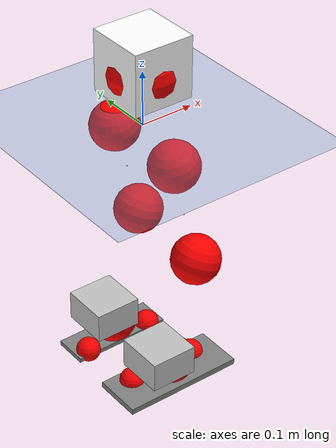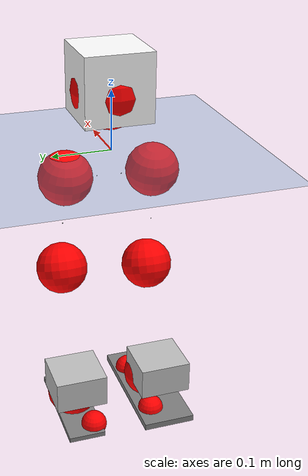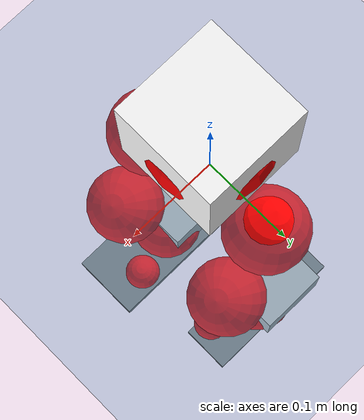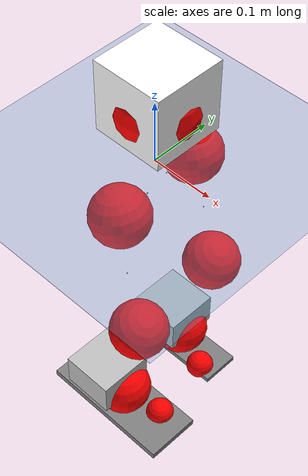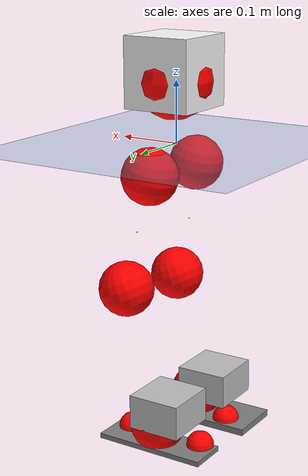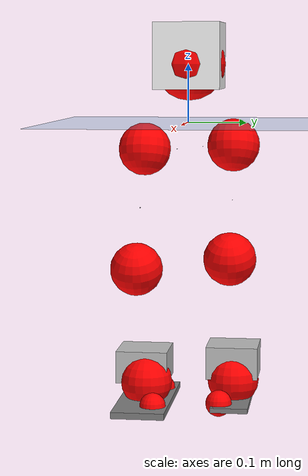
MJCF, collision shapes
<mujoco model="pi_12dof_release_v1">
  <compiler angle="radian" assetdir="assets" balanceinertia="true" inertiafromgeom="false"/>

  <option timestep="0.005" density="1.2" viscosity="2e-05"/>

  <size nkey="1"/>

  <visual>
    <quality shadowsize="8192"/>
    <map shadowclip="0.5"/>
  </visual>

  <default>
    <default class="/">
      <joint armature="0.01" damping="0.01" frictionloss="0.01"/>
      <geom contype="0" conaffinity="0" group="1" solref="-1000 -80"/>
      <site size="0.01 0.005 0.005" group="5"/>
      <general forcelimited="true" biastype="affine" gainprm="20" biasprm="0 -20 -0.5"/>
      <default class="foot">
        <geom size="0.0845 0.036 0.005" type="box" condim="6" group="4" priority="1" friction="0.9 0.2 0.2" solimp="0.015 1 0.005"/>
      </default>
      <default class="reward_collision_sphere">
        <geom group="5" rgba="1 0 0 1"/>
      </default>
    </default>
  </default>

  <asset>
    <texture type="skybox" colorspace="auto" name="//unnamed_texture_0" builtin="gradient" rgb1="0.95 0.95 0.95" rgb2="0.95 0.95 0.95" width="100" height="600"/>
    <texture type="2d" colorspace="auto" name="texplane" builtin="checker" rgb1="0.345 0.575 0.748" rgb2="0.345 0.575 0.748" markrgb="1 1 1" width="512" height="512"/>
    <material name="MatPlane" class="/" texture="texplane" texuniform="true" texrepeat="2 2" specular="0.9"/>
    <mesh name="baselink_1" class="/" file="baselink_1.STL"/>
    <mesh name="r_hip_pitch_link" class="/" file="r_hip_pitch_link.STL"/>
    <mesh name="r_hip_roll_link" class="/" file="r_hip_roll_link.STL"/>
    <mesh name="r_thigh_link" class="/" file="r_thigh_link.STL"/>
    <mesh name="r_calf_link" class="/" file="r_calf_link.STL"/>
    <mesh name="r_ankle_pitch_link" class="/" file="r_ankle_pitch_link.STL"/>
    <mesh name="r_ankle_roll_link" class="/" file="r_ankle_roll_link.STL"/>
    <mesh name="l_hip_pitch_link" class="/" file="l_hip_pitch_link.STL"/>
    <mesh name="l_hip_roll_link" class="/" file="l_hip_roll_link.STL"/>
    <mesh name="l_thigh_link" class="/" file="l_thigh_link.STL"/>
    <mesh name="l_calf_link" class="/" file="l_calf_link.STL"/>
    <mesh name="l_ankle_pitch_link" class="/" file="l_ankle_pitch_link.STL"/>
    <mesh name="l_ankle_roll_link" class="/" file="l_ankle_roll_link.STL"/>
  </asset>

  <worldbody>
    <geom name="floor" class="/" size="100 100 0.125" type="plane" group="0" material="MatPlane"/>
    <light name="toplight_shadow" class="/" pos="0 0 5" dir="0.0990148 0.0990148 -0.990148" type="directional" ambient="0.04 0.04 0.04" diffuse="0.55 0.55 0.55" specular="0.12 0.12 0.12"/>
    <light name="toplight_fill" class="/" pos="0 0 5" dir="0.0990148 0.0990148 -0.990148" type="directional" castshadow="false" ambient="0.04 0.04 0.04" diffuse="0.3 0.3 0.3" specular="0.08 0.08 0.08"/>
    <body name="trunk" pos="0.00230652 0.00234109 0.000111395" quat="1 -2.78684e-06 0.000182262 -0.000682684">
      <inertial pos="0.00270911 -0.000926104 0.0598044" quat="0.695908 -0.00445217 0.0202649 0.717831" mass="3.211" diaginertia="0.0083185 0.00806284 0.0226027"/>
      <joint name="//unnamed_joint_0" type="free"/>
      <geom name="//unnamed_geom_1" class="/" type="mesh" density="0" rgba="1 1 1 1" mesh="baselink_1"/>
      <geom name="//unnamed_geom_2" class="/" size="0.056394 0.056394 0.056394" pos="0 0 0.113925" type="box" rgba="1 1 1 1"/>
      <geom name="//unnamed_geom_3" class="reward_collision_sphere" size="0.0620334" pos="0 0 0.0996846"/>
      <site name="imu" class="/" pos="-0.00300053 0.0359633 -0.00620304" size="0.0112788"/>
      <camera name="track" class="/" pos="0 -1.95706 0" quat="0.707107 0.707107 0 0" mode="trackcom"/>
      <camera name="ego_camera" class="/" pos="0.0735781 0 0.256332" quat="-0.5 -0.5 0.5 0.5"/>
      <body name="r_hip_pitch_link" pos="0.00294842 -0.0213608 -0.0453433" quat="0.992588 -0.00124007 -0.121525 -0.00034083">
        <inertial pos="0.00107548 -0.0554758 -0.000947235" quat="-0.0130402 0.709021 -0.0383527 0.704023" mass="0.492536" diaginertia="9.21378e-05 8.12381e-05 0.000451798"/>
        <joint name="r_hip_pitch_joint" class="/" pos="0 0 0" axis="0.000758961 -0.999998 0.0017343" stiffness="0.02426" range="-1.7327 1.29574" armature="0.0115497" damping="0.0377685" frictionloss="0.0123305"/>
        <geom name="//unnamed_geom_4" class="/" type="mesh" density="0" rgba="0.75294 0.75294 0.75294 1" mesh="r_hip_pitch_link"/>
        <geom name="//unnamed_geom_5" class="/" size="0.00056394 0.00056394 0.00056394" type="box" rgba="0.75294 0.75294 0.75294 1"/>
        <body name="r_hip_roll_link" pos="0.00333252 -0.0553991 -0.00154909" quat="1 0.000124299 -0.000513593 0.000172643">
          <inertial pos="-0.000783807 0.00550268 -0.0794777" quat="0.704417 -0.0853875 -0.0763643 0.700481" mass="0.551095" diaginertia="0.000318437 0.000255793 0.00078838"/>
          <joint name="r_hip_roll_joint" class="/" pos="0 0 0" axis="-0.999931 0.00951306 -0.0068916" stiffness="0.0020393" range="-0.0701023 0.394234" armature="0.0120981" damping="0" frictionloss="0.0104169"/>
          <geom name="//unnamed_geom_6" class="/" type="mesh" density="0" rgba="0.75294 0.75294 0.75294 1" mesh="r_hip_roll_link"/>
          <geom name="//unnamed_geom_7" class="/" size="0.00056394 0.00056394 0.00056394" type="box" rgba="0.75294 0.75294 0.75294 1"/>
          <geom name="//unnamed_geom_8" class="reward_collision_sphere" size="0.0451152"/>
          <body name="r_thigh_link" pos="-0.00761522 -0.0059548 -0.10106" quat="1 -4.25811e-05 7.61392e-05 0.000278492">
            <inertial pos="-0.00115352 0.00176906 -0.0696376" quat="0.736961 0.675924 -0.00266386 -0.00269984" mass="0.151986" diaginertia="0.000111324 8.30997e-05 0.000338018"/>
            <joint name="r_thigh_joint" class="/" pos="0 0 0" axis="0.00581295 0.00338161 -0.999977" range="-0.266566 0.601863" armature="0.0126763" damping="0.0117027" frictionloss="0.0153753"/>
            <geom name="//unnamed_geom_9" class="/" type="mesh" density="0" rgba="0.75294 0.75294 0.75294 1" mesh="r_thigh_link"/>
            <geom name="//unnamed_geom_10" class="/" size="0.00056394 0.00056394 0.00056394" type="box" rgba="0.75294 0.75294 0.75294 1"/>
            <body name="r_calf_link" pos="0.000193167 -0.00245597 -0.106143" quat="0.947658 8.8154e-05 0.319288 -5.2871e-05">
              <inertial pos="-0.00266556 0.000885597 -0.0998744" quat="0.999511 -0.0198433 0.0175792 0.0165722" mass="1.09261" diaginertia="0.00297665 0.00293826 0.000975353"/>
              <joint name="r_calf_joint" class="/" pos="0 0 0" axis="-0.0109191 -0.99991 -0.00784104" stiffness="0.0238116" range="-1.75427 0.649329" armature="0.0131997" damping="0.0199664" frictionloss="0.0109082"/>
              <geom name="//unnamed_geom_11" class="/" type="mesh" density="0" rgba="0.75294 0.75294 0.75294 1" mesh="r_calf_link"/>
              <geom name="//unnamed_geom_12" class="/" size="0.00056394 0.00056394 0.00056394" type="box" rgba="0.75294 0.75294 0.75294 1"/>
              <geom name="//unnamed_geom_13" class="reward_collision_sphere" size="0.0451152"/>
              <body name="r_ankle_pitch_link" pos="0.000301804 0.00270989 -0.195787" quat="0.979927 -0.000574579 -0.199355 0.000214194">
                <inertial pos="0.0047785 0.00331556 0.00593278" quat="-0.00379018 0.732589 -0.00418019 0.680648" mass="0.23928" diaginertia="0.000260642 0.000185451 0.000653971"/>
                <joint name="r_ankle_pitch_joint" class="/" pos="0 0 0" axis="-0.00394068 -0.999985 -0.00375744" stiffness="0.00251578" range="-1.31327 0.368296" armature="0.0114308" damping="0.00557245" frictionloss="0.00880132"/>
                <geom name="//unnamed_geom_14" class="/" type="mesh" density="0" rgba="0.75294 0.75294 0.75294 1" mesh="r_ankle_pitch_link"/>
                <geom name="//unnamed_geom_15" class="/" size="0.0439873 0.0451152 0.028197" type="box" rgba="0.75294 0.75294 0.75294 1"/>
                <body name="r_ankle_roll_link" pos="0.078473 0.00747026 0.00285394" quat="1 0.000372704 0.000144035 -0.000210576">
                  <inertial pos="-0.0217641 0.00146952 -0.028137" quat="0.558689 0.429546 0.435314 0.560231" mass="0.845334" diaginertia="0.00113616 0.000923719 0.00192927"/>
                  <joint name="r_ankle_roll_joint" class="/" pos="0 0 0" axis="-0.999682 -0.0152975 -0.0200241" stiffness="0.00656366" range="-0.186772 0.240133" armature="0.0146721" damping="0" frictionloss="0.0116016"/>
                  <geom name="//unnamed_geom_16" class="/" type="mesh" density="0" rgba="0.75294 0.75294 0.75294 1" mesh="r_ankle_roll_link"/>
                  <geom name="//unnamed_geom_17" class="/" type="mesh" rgba="0.75294 0.75294 0.75294 1" mesh="r_ankle_roll_link"/>
                  <geom name="right_foot" class="foot" size="0.114538 0.0455353 0.00554691" pos="-0.0500331 0 -0.0626589"/>
                  <geom name="//unnamed_geom_19" class="reward_collision_sphere" size="0.0451152" pos="-0.0490521 0 -0.0284813"/>
                  <geom name="//unnamed_geom_20" class="reward_collision_sphere" size="0.0225576" pos="0.0147156 0.0195706 -0.0569626"/>
                  <geom name="//unnamed_geom_21" class="reward_collision_sphere" size="0.0225576" pos="-0.117725 0.0195706 -0.0569626"/>
                  <site name="right_foot" class="foot" pos="-0.0500331 0 -0.0626589" size="0.0112788"/>
                </body>
              </body>
            </body>
          </body>
        </body>
      </body>
      <body name="l_hip_pitch_link" pos="-0.00327237 0.0226665 -0.0413162" quat="0.99221 -2.6567e-05 -0.124576 -6.39858e-05">
        <inertial pos="-0.000160687 0.0503292 0.00476432" quat="-0.0338344 0.708764 0.0390429 0.703551" mass="0.508445" diaginertia="0.000107202 9.37077e-05 0.000586913"/>
        <joint name="l_hip_pitch_joint" class="/" pos="0 0 0" axis="0.00230397 0.999987 -0.0045364" range="-1.30004 1.79267" armature="0.00957944" damping="0.0274784" frictionloss="0.0099532"/>
        <geom name="//unnamed_geom_22" class="/" type="mesh" density="0" rgba="0.75294 0.75294 0.75294 1" mesh="l_hip_pitch_link"/>
        <geom name="//unnamed_geom_23" class="/" size="0.00056394 0.00056394 0.00056394" type="box" rgba="0.75294 0.75294 0.75294 1"/>
        <body name="l_hip_roll_link" pos="0.000799132 0.0530094 0.00276312" quat="1 -8.00758e-05 -0.000256435 0.000339892">
          <inertial pos="0.00284475 0.00326599 -0.0795551" quat="0.702584 -0.0515432 -0.0746075 0.7058" mass="0.546039" diaginertia="0.000327333 0.000254067 0.000808393"/>
          <joint name="l_hip_roll_joint" class="/" pos="0 0 0" axis="-0.999997 -0.00180982 -0.00143323" range="-0.386998 0.0523605" armature="0.0115145" damping="0.0378468" frictionloss="0.0111386"/>
          <geom name="//unnamed_geom_24" class="/" type="mesh" density="0" rgba="0.75294 0.75294 0.75294 1" mesh="l_hip_roll_link"/>
          <geom name="//unnamed_geom_25" class="/" size="0.00056394 0.00056394 0.00056394" type="box" rgba="0.75294 0.75294 0.75294 1"/>
          <geom name="//unnamed_geom_26" class="reward_collision_sphere" size="0.0451152"/>
          <body name="l_thigh_link" pos="0.00128564 0.000346701 -0.0955541" quat="1 -0.000132418 -0.000416951 0.000290498">
            <inertial pos="-0.000751272 -0.000110756 -0.069449" quat="0.685373 0.72812 -0.00319017 0.00977012" mass="0.165905" diaginertia="0.00011377 8.52114e-05 0.000330838"/>
            <joint name="l_thigh_joint" class="/" pos="0 0 0" axis="0.000399599 -0.00204415 -0.999998" stiffness="0.032006" range="-0.605067 0.306666" armature="0.011693" damping="0.00772185" frictionloss="0.00999369"/>
            <geom name="//unnamed_geom_27" class="/" type="mesh" density="0" rgba="0.75294 0.75294 0.75294 1" mesh="l_thigh_link"/>
            <geom name="//unnamed_geom_28" class="/" size="0.00056394 0.00056394 0.00056394" type="box" rgba="0.75294 0.75294 0.75294 1"/>
            <body name="l_calf_link" pos="-0.00213225 -0.00194793 -0.101265" quat="0.947628 -0.000160847 0.319375 -0.000422439">
              <inertial pos="-3.87312e-05 -0.00111333 -0.0971664" quat="0.999983 0.00359539 -0.00124557 0.00442468" mass="1.27174" diaginertia="0.0033609 0.00329944 0.00110407"/>
              <joint name="l_calf_joint" class="/" pos="0 0 0" axis="-0.00326397 0.999993 0.00156439" stiffness="0.00747126" range="-0.786671 1.55051" armature="0.0113586" damping="0.0110698" frictionloss="0.0120893"/>
              <geom name="//unnamed_geom_29" class="/" type="mesh" density="0" rgba="0.75294 0.75294 0.75294 1" mesh="l_calf_link"/>
              <geom name="//unnamed_geom_30" class="/" size="0.00056394 0.00056394 0.00056394" type="box" rgba="0.75294 0.75294 0.75294 1"/>
              <geom name="//unnamed_geom_31" class="reward_collision_sphere" size="0.0451152"/>
              <body name="l_ankle_pitch_link" pos="0.00163153 0.000578524 -0.205399" quat="0.980024 3.048e-06 -0.198882 0.000263425">
                <inertial pos="0.00580162 -0.00314895 0.000838961" quat="-0.000678093 0.708727 0.000951175 0.705482" mass="0.276111" diaginertia="0.00029389 0.000202743 0.000701758"/>
                <joint name="l_ankle_pitch_joint" class="/" pos="0 0 0" axis="0.00166882 0.999991 0.00391772" range="-0.404152 1.26527" armature="0.0130063" damping="0" frictionloss="0.0125228"/>
                <geom name="//unnamed_geom_32" class="/" type="mesh" density="0" rgba="0.75294 0.75294 0.75294 1" mesh="l_ankle_pitch_link"/>
                <geom name="//unnamed_geom_33" class="/" size="0.0439873 0.0451152 0.028197" type="box" rgba="0.75294 0.75294 0.75294 1"/>
                <body name="l_ankle_roll_link" pos="0.0677504 0.0010041 -0.00325599" quat="0.999999 0.000687267 -0.0010585 2.40793e-06">
                  <inertial pos="-0.0231689 0.000483316 -0.0199107" quat="0.550443 0.435596 0.434952 0.56399" mass="0.787431" diaginertia="0.00102196 0.000922455 0.00173229"/>
                  <joint name="l_ankle_roll_joint" class="/" pos="0 0 0" axis="-0.999975 -0.00611473 -0.00360711" stiffness="0.000377554" range="-0.128507 0.153784" armature="0.00964989" damping="0.00517856" frictionloss="0.0113169"/>
                  <geom name="//unnamed_geom_34" class="/" type="mesh" density="0" rgba="0.75294 0.75294 0.75294 1" mesh="l_ankle_roll_link"/>
                  <geom name="//unnamed_geom_35" class="/" type="mesh" rgba="0.75294 0.75294 0.75294 1" mesh="l_ankle_roll_link"/>
                  <geom name="left_foot" class="foot" size="0.0946543 0.0320802 0.0041516" pos="-0.0500331 0 -0.0626589"/>
                  <geom name="//unnamed_geom_37" class="reward_collision_sphere" size="0.0451152" pos="-0.0490521 0 -0.0284813"/>
                  <geom name="//unnamed_geom_38" class="reward_collision_sphere" size="0.0225576" pos="0.0147156 -0.0195706 -0.0569626"/>
                  <geom name="//unnamed_geom_39" class="reward_collision_sphere" size="0.0225576" pos="-0.117725 -0.0195706 -0.0569626"/>
                  <site name="left_foot" class="foot" pos="-0.0500331 0 -0.0626589" size="0.0112788"/>
                </body>
              </body>
            </body>
          </body>
        </body>
      </body>
    </body>
  </worldbody>

  <contact>
    <pair class="/" geom1="floor" geom2="right_foot" name="//unnamed_contact_1"/>
    <pair class="/" geom1="floor" geom2="left_foot" name="//unnamed_contact_0"/>
  </contact>

  <actuator>
    <general name="r_hip_pitch_joint" class="/" joint="r_hip_pitch_joint" forcerange="-23.519 23.519" gainprm="22.6102" biasprm="0 -22.6102 -0.60823"/>
    <general name="r_hip_roll_joint" class="/" joint="r_hip_roll_joint" forcerange="-27.8075 27.8075" gainprm="22.6102" biasprm="0 -22.6102 -0.60823"/>
    <general name="r_thigh_joint" class="/" joint="r_thigh_joint" forcerange="-23.5037 23.5037" gainprm="22.6102" biasprm="0 -22.6102 -0.60823"/>
    <general name="r_calf_joint" class="/" joint="r_calf_joint" forcerange="-22.261 22.261" gainprm="22.6102" biasprm="0 -22.6102 -0.60823"/>
    <general name="r_ankle_pitch_joint" class="/" joint="r_ankle_pitch_joint" forcerange="-24.6983 24.6983" gainprm="22.6102" biasprm="0 -22.6102 -0.60823"/>
    <general name="r_ankle_roll_joint" class="/" joint="r_ankle_roll_joint" forcerange="-23.2 23.2" gainprm="22.6102" biasprm="0 -22.6102 -0.60823"/>
    <general name="l_hip_pitch_joint" class="/" joint="l_hip_pitch_joint" forcerange="-26.0538 26.0538" gainprm="22.6102" biasprm="0 -22.6102 -0.60823"/>
    <general name="l_hip_roll_joint" class="/" joint="l_hip_roll_joint" forcerange="-20.0897 20.0897" gainprm="22.6102" biasprm="0 -22.6102 -0.60823"/>
    <general name="l_thigh_joint" class="/" joint="l_thigh_joint" forcerange="-28.215 28.215" gainprm="22.6102" biasprm="0 -22.6102 -0.60823"/>
    <general name="l_calf_joint" class="/" joint="l_calf_joint" forcerange="-25.592 25.592" gainprm="22.6102" biasprm="0 -22.6102 -0.60823"/>
    <general name="l_ankle_pitch_joint" class="/" joint="l_ankle_pitch_joint" forcerange="-22.6815 22.6815" gainprm="22.6102" biasprm="0 -22.6102 -0.60823"/>
    <general name="l_ankle_roll_joint" class="/" joint="l_ankle_roll_joint" forcerange="-16.9605 16.9605" gainprm="22.6102" biasprm="0 -22.6102 -0.60823"/>
  </actuator>

  <sensor>
    <gyro site="imu" name="imu_angular_velocity"/>
    <velocimeter site="imu" name="imu_linear_velocity"/>
    <framelinvel objtype="site" objname="left_foot" name="left_foot_global_linear_velocity"/>
    <framelinvel objtype="site" objname="right_foot" name="right_foot_global_linear_velocity"/>
  </sensor>

  <keyframe>
    <key name="home" qpos="0 0 0.291 1 0 0 0 0.4 0 0 -0.8 0.4 0 -0.4 0 0 0.8 -0.4 0"/>
  </keyframe>
</mujoco>
